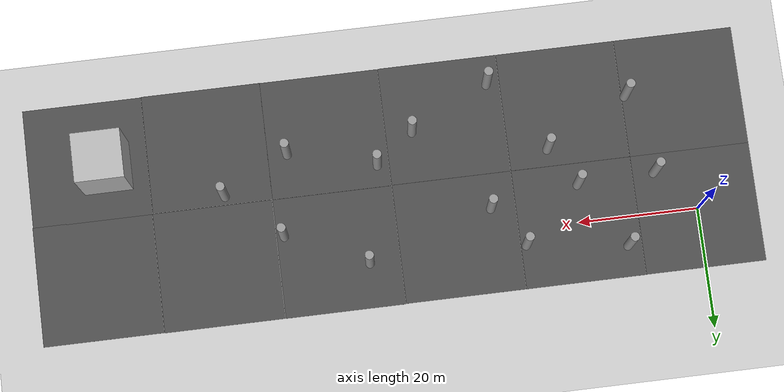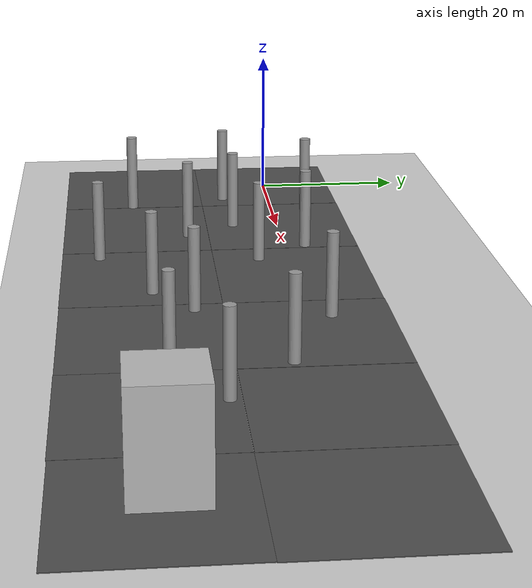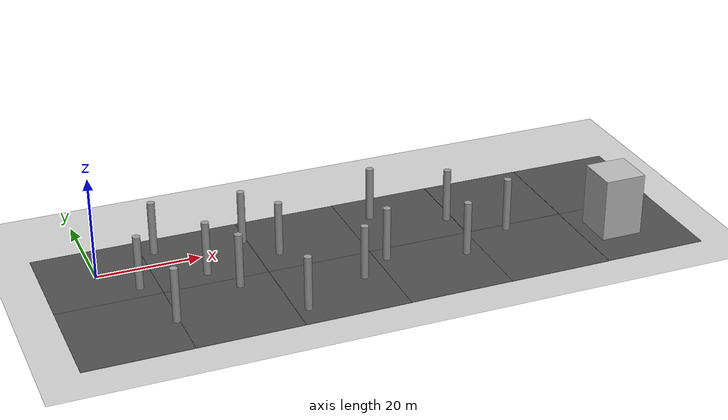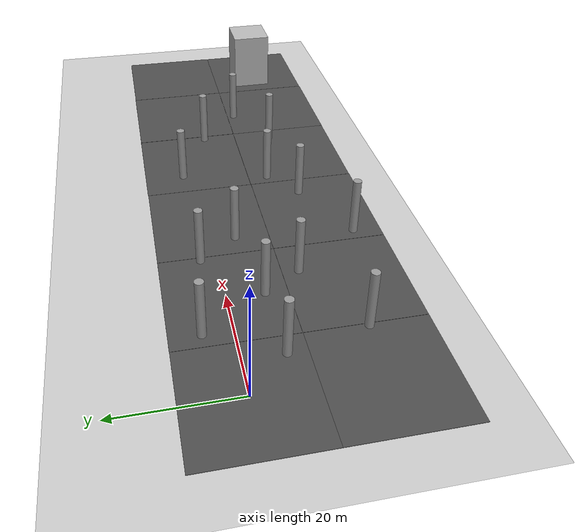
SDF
<sdf version="1.7">
 <world name="default">
  <light name="sun" type="directional">
   <pose>0 0 10 0 -0 0</pose>
   <diffuse>0.8 0.8 0.8 1</diffuse>
   <specular>0.2 0.2 0.2 1</specular>
   <attenuation>
    <range>1000</range>
    <constant>0.9</constant>
    <linear>0.01</linear>
    <quadratic>0.001</quadratic>
   </attenuation>
   <direction>-0.5 0.1 -0.9</direction>
   <spot><inner_angle>0</inner_angle><outer_angle>0</outer_angle><falloff>0</falloff></spot>
  </light>
  <model name="ground_plane">
   <static>1</static>
   <link name="link">
    <collision name="collision">
     <geometry><plane><normal>0 0 1</normal><size>100 100</size></plane></geometry>
     <surface>
      <contact><collide_bitmask>65535</collide_bitmask></contact>
      <friction><ode><mu>100</mu><mu2>50</mu2></ode></friction>
     </surface>
    </collision>
    <visual name="visual">
     <cast_shadows>0</cast_shadows>
     <geometry><plane><normal>0 0 1</normal><size>100 100</size></plane></geometry>
     <material>
      <script><uri>file://media/materials/scripts/gazebo.material</uri><name>Gazebo/Grey</name></script>
     </material>
    </visual>
   </link>
  </model>
  <physics name="default_physics" default="0" type="ode">
   <ode>
    <solver>
     <type>quick</type>
     <iters>10</iters>
     <sor>1.3</sor>
     <use_dynamic_moi_rescaling>0</use_dynamic_moi_rescaling>
    </solver>
    <constraints>
     <cfm>0</cfm>
     <erp>0.2</erp>
     <contact_max_correcting_vel>100</contact_max_correcting_vel>
     <contact_surface_layer>0.001</contact_surface_layer>
    </constraints>
   </ode>
   <max_step_size>0.004</max_step_size>
   <real_time_factor>1</real_time_factor>
   <real_time_update_rate>250</real_time_update_rate>
  </physics>
  <gravity>0 0 -9.8066</gravity>
  <magnetic_field>6e-06 2.3e-05 -4.2e-05</magnetic_field>
  <atmosphere type="adiabatic"/>
  <scene><ambient>0.4 0.4 0.4 1</ambient><background>0.7 0.7 0.7 1</background><shadows>1</shadows></scene>
  <spherical_coordinates>
   <surface_model>EARTH_WGS84</surface_model>
   <latitude_deg>0</latitude_deg>
   <longitude_deg>0</longitude_deg>
   <elevation>0</elevation>
   <heading_deg>0</heading_deg>
  </spherical_coordinates>
  <model name="Fire_0">
   <link name="link_0">
    <inertial>
     <mass>51.3237</mass>
     <inertia><ixx>147.461</ixx><ixy>0</ixy><ixz>0</ixz><iyy>147.461</iyy><iyz>0</iyz><izz>89.614</izz></inertia>
    </inertial>
    <pose>3e-06 5e-06 0 0 -0 0</pose>
    <visual name="visual">
     <geometry><box><size>8.09242 8.09245 12.2488</size></box></geometry>
     <material>
      <lighting>1</lighting>
      <script><uri>file://media/materials/scripts/gazebo.material</uri><name>Gazebo/Fire</name></script>
      <shader type="pixel"/>
     </material>
    </visual>
    <collision name="collision">
     <geometry><box><size>8.09242 8.09245 12.2488</size></box></geometry>
     <surface>
      <friction>
       <ode><mu>1</mu><mu2>1</mu2><fdir1>0 0 0</fdir1><slip1>0</slip1><slip2>0</slip2></ode>
       <torsional>
        <coefficient>1</coefficient>
        <patch_radius>0</patch_radius>
        <surface_radius>0</surface_radius>
        <use_patch_radius>1</use_patch_radius>
        <ode><slip>0</slip></ode>
       </torsional>
      </friction>
      <bounce><restitution_coefficient>0</restitution_coefficient><threshold>1e+06</threshold></bounce>
      <contact>
       <collide_without_contact>0</collide_without_contact>
       <collide_without_contact_bitmask>1</collide_without_contact_bitmask>
       <collide_bitmask>1</collide_bitmask>
       <ode>
        <soft_cfm>0</soft_cfm>
        <soft_erp>0.2</soft_erp>
        <kp>1e+13</kp>
        <kd>1</kd>
        <max_vel>0.01</max_vel>
        <min_depth>0</min_depth>
       </ode>
       <bullet>
        <split_impulse>1</split_impulse>
        <split_impulse_penetration_threshold>-0.01</split_impulse_penetration_threshold>
        <soft_cfm>0</soft_cfm>
        <soft_erp>0.2</soft_erp>
        <kp>1e+13</kp>
        <kd>1</kd>
       </bullet>
      </contact>
     </surface>
    </collision>
   </link>
   <static>0</static>
   <pose>96.9433 -18.5687 6.17436 3e-06 -1e-06 0.003117</pose>
  </model>
  <model name="asphalt_plane_clone_clone">
   <static>1</static>
   <link name="link">
    <collision name="collision"><geometry><box><size>20 20 0.1</size></box></geometry></collision>
    <visual name="visual">
     <cast_shadows>0</cast_shadows>
     <geometry><box><size>20 20 0.1</size></box></geometry>
     <material>
      <script>
       <uri>model://asphalt_plane/materials/scripts</uri>
       <uri>model://asphalt_plane/materials/textures</uri>
       <name>vrc/asphalt</name>
      </script>
     </material>
    </visual>
   </link>
   <pose>40.0221 -0.023387 0 0 -0 0</pose>
  </model>
  <model name="asphalt_plane_clone_clone_0">
   <static>1</static>
   <link name="link">
    <collision name="collision"><geometry><box><size>20 20 0.1</size></box></geometry></collision>
    <visual name="visual">
     <cast_shadows>0</cast_shadows>
     <geometry><box><size>20 20 0.1</size></box></geometry>
     <material>
      <script>
       <uri>model://asphalt_plane/materials/scripts</uri>
       <uri>model://asphalt_plane/materials/textures</uri>
       <name>vrc/asphalt</name>
      </script>
     </material>
    </visual>
   </link>
   <pose>60.0596 0.040619 0 0 -0 0</pose>
  </model>
  <model name="asphalt_plane_clone_clone_1">
   <static>1</static>
   <link name="link">
    <collision name="collision"><geometry><box><size>20 20 0.1</size></box></geometry></collision>
    <visual name="visual">
     <cast_shadows>0</cast_shadows>
     <geometry><box><size>20 20 0.1</size></box></geometry>
     <material>
      <script>
       <uri>model://asphalt_plane/materials/scripts</uri>
       <uri>model://asphalt_plane/materials/textures</uri>
       <name>vrc/asphalt</name>
      </script>
     </material>
    </visual>
   </link>
   <pose>60.0691 -19.9888 0 0 -0 0</pose>
  </model>
  <model name="asphalt_plane_clone_clone_2">
   <static>1</static>
   <link name="link">
    <collision name="collision"><geometry><box><size>20 20 0.1</size></box></geometry></collision>
    <visual name="visual">
     <cast_shadows>0</cast_shadows>
     <geometry><box><size>20 20 0.1</size></box></geometry>
     <material>
      <script>
       <uri>model://asphalt_plane/materials/scripts</uri>
       <uri>model://asphalt_plane/materials/textures</uri>
       <name>vrc/asphalt</name>
      </script>
     </material>
    </visual>
   </link>
   <pose>80.0782 -20.025 0 0 -0 0</pose>
  </model>
  <model name="asphalt_plane_clone_clone_3">
   <static>1</static>
   <link name="link">
    <collision name="collision"><geometry><box><size>20 20 0.1</size></box></geometry></collision>
    <visual name="visual">
     <cast_shadows>0</cast_shadows>
     <geometry><box><size>20 20 0.1</size></box></geometry>
     <material>
      <script>
       <uri>model://asphalt_plane/materials/scripts</uri>
       <uri>model://asphalt_plane/materials/textures</uri>
       <name>vrc/asphalt</name>
      </script>
     </material>
    </visual>
   </link>
   <pose>80.1429 0.023098 0 0 -0 0</pose>
  </model>
  <model name="asphalt_plane_clone_clone_4">
   <static>1</static>
   <link name="link">
    <collision name="collision"><geometry><box><size>20 20 0.1</size></box></geometry></collision>
    <visual name="visual">
     <cast_shadows>0</cast_shadows>
     <geometry><box><size>20 20 0.1</size></box></geometry>
     <material>
      <script>
       <uri>model://asphalt_plane/materials/scripts</uri>
       <uri>model://asphalt_plane/materials/textures</uri>
       <name>vrc/asphalt</name>
      </script>
     </material>
    </visual>
   </link>
   <pose>100.194 -0.029066 0 0 -0 0</pose>
  </model>
  <model name="asphalt_plane_clone_clone_5">
   <static>1</static>
   <link name="link">
    <collision name="collision"><geometry><box><size>20 20 0.1</size></box></geometry></collision>
    <visual name="visual">
     <cast_shadows>0</cast_shadows>
     <geometry><box><size>20 20 0.1</size></box></geometry>
     <material>
      <script>
       <uri>model://asphalt_plane/materials/scripts</uri>
       <uri>model://asphalt_plane/materials/textures</uri>
       <name>vrc/asphalt</name>
      </script>
     </material>
    </visual>
   </link>
   <pose>100.112 -19.9483 0 0 -0 0</pose>
  </model>
  <model name="asphalt_plane_clone_clone_6">
   <static>1</static>
   <link name="link">
    <collision name="collision"><geometry><box><size>20 20 0.1</size></box></geometry></collision>
    <visual name="visual">
     <cast_shadows>0</cast_shadows>
     <geometry><box><size>20 20 0.1</size></box></geometry>
     <material>
      <script>
       <uri>model://asphalt_plane/materials/scripts</uri>
       <uri>model://asphalt_plane/materials/textures</uri>
       <name>vrc/asphalt</name>
      </script>
     </material>
    </visual>
   </link>
   <pose>40.0371 -20.0305 0 0 -0 0</pose>
  </model>
  <model name="asphalt_plane_clone_clone_7">
   <static>1</static>
   <link name="link">
    <collision name="collision"><geometry><box><size>20 20 0.1</size></box></geometry></collision>
    <visual name="visual">
     <cast_shadows>0</cast_shadows>
     <geometry><box><size>20 20 0.1</size></box></geometry>
     <material>
      <script>
       <uri>model://asphalt_plane/materials/scripts</uri>
       <uri>model://asphalt_plane/materials/textures</uri>
       <name>vrc/asphalt</name>
      </script>
     </material>
    </visual>
   </link>
   <pose>19.9819 -20.029 0 0 -0 0</pose>
  </model>
  <model name="asphalt_plane_clone_clone_8">
   <static>1</static>
   <link name="link">
    <collision name="collision"><geometry><box><size>20 20 0.1</size></box></geometry></collision>
    <visual name="visual">
     <cast_shadows>0</cast_shadows>
     <geometry><box><size>20 20 0.1</size></box></geometry>
     <material>
      <script>
       <uri>model://asphalt_plane/materials/scripts</uri>
       <uri>model://asphalt_plane/materials/textures</uri>
       <name>vrc/asphalt</name>
      </script>
     </material>
    </visual>
   </link>
   <pose>-0.073934 -20.035 0 0 -0 0</pose>
  </model>
  <model name="unit_cylinder_clone_clone_4">
   <pose>6.47679 -6.78193 5.35115 1e-06 -6e-06 0.64433</pose>
   <link name="link">
    <inertial>
     <mass>1</mass>
     <inertia><ixx>0.145833</ixx><ixy>0</ixy><ixz>0</ixz><iyy>0.145833</iyy><iyz>0</iyz><izz>0.125</izz></inertia>
    </inertial>
    <collision name="collision">
     <geometry><cylinder><radius>0.736075</radius><length>10.6023</length></cylinder></geometry>
    </collision>
    <visual name="visual">
     <geometry><cylinder><radius>0.736075</radius><length>10.6023</length></cylinder></geometry>
     <material>
      <script><name>Gazebo/Grey</name><uri>file://media/materials/scripts/gazebo.material</uri></script>
     </material>
    </visual>
   </link>
  </model>
  <model name="asphalt_plane_clone_clone_8_clone">
   <static>1</static>
   <link name="link">
    <collision name="collision"><geometry><box><size>20 20 0.1</size></box></geometry></collision>
    <visual name="visual">
     <cast_shadows>0</cast_shadows>
     <geometry><box><size>20 20 0.1</size></box></geometry>
     <material>
      <script>
       <uri>model://asphalt_plane/materials/scripts</uri>
       <uri>model://asphalt_plane/materials/textures</uri>
       <name>vrc/asphalt</name>
      </script>
     </material>
    </visual>
   </link>
   <pose>19.9733 -0.017558 0 0 -0 0</pose>
  </model>
  <model name="asphalt_plane_clone_clone_8_clone_0">
   <static>1</static>
   <link name="link">
    <collision name="collision"><geometry><box><size>20 20 0.1</size></box></geometry></collision>
    <visual name="visual">
     <cast_shadows>0</cast_shadows>
     <geometry><box><size>20 20 0.1</size></box></geometry>
     <material>
      <script>
       <uri>model://asphalt_plane/materials/scripts</uri>
       <uri>model://asphalt_plane/materials/textures</uri>
       <name>vrc/asphalt</name>
      </script>
     </material>
    </visual>
   </link>
   <pose>-0.073686 -0.041685 0 0 -0 0</pose>
  </model>
  <model name="unit_cylinder_clone_clone_4_clone">
   <pose>23.563 -12.8469 5.35115 -4e-06 -2e-06 0.653966</pose>
   <link name="link">
    <inertial>
     <mass>1</mass>
     <inertia><ixx>0.145833</ixx><ixy>0</ixy><ixz>0</ixz><iyy>0.145833</iyy><iyz>0</iyz><izz>0.125</izz></inertia>
    </inertial>
    <collision name="collision">
     <geometry><cylinder><radius>0.736075</radius><length>10.6023</length></cylinder></geometry>
    </collision>
    <visual name="visual">
     <geometry><cylinder><radius>0.736075</radius><length>10.6023</length></cylinder></geometry>
     <material>
      <script><name>Gazebo/Grey</name><uri>file://media/materials/scripts/gazebo.material</uri></script>
     </material>
    </visual>
   </link>
  </model>
  <model name="unit_cylinder_clone_clone_4_clone_0">
   <pose>34.1888 -4.02993 5.351 1e-06 -8e-06 0.645454</pose>
   <link name="link">
    <inertial>
     <mass>1</mass>
     <inertia><ixx>0.145833</ixx><ixy>0</ixy><ixz>0</ixz><iyy>0.145833</iyy><iyz>0</iyz><izz>0.125</izz></inertia>
    </inertial>
    <collision name="collision">
     <geometry><cylinder><radius>0.736075</radius><length>10.6023</length></cylinder></geometry>
    </collision>
    <visual name="visual">
     <geometry><cylinder><radius>0.736075</radius><length>10.6023</length></cylinder></geometry>
     <material>
      <script><name>Gazebo/Grey</name><uri>file://media/materials/scripts/gazebo.material</uri></script>
     </material>
    </visual>
   </link>
  </model>
  <model name="unit_cylinder_clone_clone_4_clone_1">
   <pose>52.0367 -13.5811 5.35113 -2e-06 -0 0.650306</pose>
   <link name="link">
    <inertial>
     <mass>1</mass>
     <inertia><ixx>0.145833</ixx><ixy>0</ixy><ixz>0</ixz><iyy>0.145833</iyy><iyz>0</iyz><izz>0.125</izz></inertia>
    </inertial>
    <collision name="collision">
     <geometry><cylinder><radius>0.736075</radius><length>10.6023</length></cylinder></geometry>
    </collision>
    <visual name="visual">
     <geometry><cylinder><radius>0.736075</radius><length>10.6023</length></cylinder></geometry>
     <material>
      <script><name>Gazebo/Grey</name><uri>file://media/materials/scripts/gazebo.material</uri></script>
     </material>
    </visual>
   </link>
  </model>
  <model name="unit_cylinder_clone_clone_4_clone_2">
   <pose>45.6556 -18.4488 5.35115 -3e-06 -2e-06 0.648044</pose>
   <link name="link">
    <inertial>
     <mass>1</mass>
     <inertia><ixx>0.145833</ixx><ixy>0</ixy><ixz>0</ixz><iyy>0.145833</iyy><iyz>0</iyz><izz>0.125</izz></inertia>
    </inertial>
    <collision name="collision">
     <geometry><cylinder><radius>0.736075</radius><length>10.6023</length></cylinder></geometry>
    </collision>
    <visual name="visual">
     <geometry><cylinder><radius>0.736075</radius><length>10.6023</length></cylinder></geometry>
     <material>
      <script><name>Gazebo/Grey</name><uri>file://media/materials/scripts/gazebo.material</uri></script>
     </material>
    </visual>
   </link>
  </model>
  <model name="unit_cylinder_clone_clone_4_clone_3">
   <pose>66.7892 -17.2108 5.35115 2e-06 -0 0.656097</pose>
   <link name="link">
    <inertial>
     <mass>1</mass>
     <inertia><ixx>0.145833</ixx><ixy>0</ixy><ixz>0</ixz><iyy>0.145833</iyy><iyz>0</iyz><izz>0.125</izz></inertia>
    </inertial>
    <collision name="collision">
     <geometry><cylinder><radius>0.736075</radius><length>10.6023</length></cylinder></geometry>
    </collision>
    <visual name="visual">
     <geometry><cylinder><radius>0.736075</radius><length>10.6023</length></cylinder></geometry>
     <material>
      <script><name>Gazebo/Grey</name><uri>file://media/materials/scripts/gazebo.material</uri></script>
     </material>
    </visual>
   </link>
  </model>
  <model name="unit_cylinder_clone_clone_4_clone_4">
   <pose>68.8065 -3.48474 5.35112 2e-06 -3e-06 0.649889</pose>
   <link name="link">
    <inertial>
     <mass>1</mass>
     <inertia><ixx>0.145833</ixx><ixy>0</ixy><ixz>0</ixz><iyy>0.145833</iyy><iyz>0</iyz><izz>0.125</izz></inertia>
    </inertial>
    <collision name="collision">
     <geometry><cylinder><radius>0.736075</radius><length>10.6023</length></cylinder></geometry>
    </collision>
    <visual name="visual">
     <geometry><cylinder><radius>0.736075</radius><length>10.6023</length></cylinder></geometry>
     <material>
      <script><name>Gazebo/Grey</name><uri>file://media/materials/scripts/gazebo.material</uri></script>
     </material>
    </visual>
   </link>
  </model>
  <model name="unit_cylinder_clone_clone_4_clone_5">
   <pose>55.2036 2.66625 5.35114 4e-06 -4e-06 0.650151</pose>
   <link name="link">
    <inertial>
     <mass>1</mass>
     <inertia><ixx>0.145833</ixx><ixy>0</ixy><ixz>0</ixz><iyy>0.145833</iyy><iyz>0</iyz><izz>0.125</izz></inertia>
    </inertial>
    <collision name="collision">
     <geometry><cylinder><radius>0.736075</radius><length>10.6023</length></cylinder></geometry>
    </collision>
    <visual name="visual">
     <geometry><cylinder><radius>0.736075</radius><length>10.6023</length></cylinder></geometry>
     <material>
      <script><name>Gazebo/Grey</name><uri>file://media/materials/scripts/gazebo.material</uri></script>
     </material>
    </visual>
   </link>
  </model>
  <model name="unit_cylinder_clone_clone_4_clone_6">
   <pose>29.1274 2.78784 5.35114 6e-06 1e-05 0.656123</pose>
   <link name="link">
    <inertial>
     <mass>1</mass>
     <inertia><ixx>0.145833</ixx><ixy>0</ixy><ixz>0</ixz><iyy>0.145833</iyy><iyz>0</iyz><izz>0.125</izz></inertia>
    </inertial>
    <collision name="collision">
     <geometry><cylinder><radius>0.736075</radius><length>10.6023</length></cylinder></geometry>
    </collision>
    <visual name="visual">
     <geometry><cylinder><radius>0.736075</radius><length>10.6023</length></cylinder></geometry>
     <material>
      <script><name>Gazebo/Grey</name><uri>file://media/materials/scripts/gazebo.material</uri></script>
     </material>
    </visual>
   </link>
  </model>
  <model name="unit_cylinder_clone_clone_4_clone_7">
   <pose>12.3659 4.86462 5.35116 1e-06 1e-05 0.646622</pose>
   <link name="link">
    <inertial>
     <mass>1</mass>
     <inertia><ixx>0.145833</ixx><ixy>0</ixy><ixz>0</ixz><iyy>0.145833</iyy><iyz>0</iyz><izz>0.125</izz></inertia>
    </inertial>
    <collision name="collision">
     <geometry><cylinder><radius>0.736075</radius><length>10.6023</length></cylinder></geometry>
    </collision>
    <visual name="visual">
     <geometry><cylinder><radius>0.736075</radius><length>10.6023</length></cylinder></geometry>
     <material>
      <script><name>Gazebo/Grey</name><uri>file://media/materials/scripts/gazebo.material</uri></script>
     </material>
    </visual>
   </link>
  </model>
  <model name="unit_cylinder_clone_clone_4_clone_8">
   <pose>9.48351 -20.2645 5.35115 -3e-06 -4e-06 0.68599</pose>
   <link name="link">
    <inertial>
     <mass>1</mass>
     <inertia><ixx>0.145833</ixx><ixy>0</ixy><ixz>0</ixz><iyy>0.145833</iyy><iyz>0</iyz><izz>0.125</izz></inertia>
    </inertial>
    <collision name="collision">
     <geometry><cylinder><radius>0.736075</radius><length>10.6023</length></cylinder></geometry>
    </collision>
    <visual name="visual">
     <geometry><cylinder><radius>0.736075</radius><length>10.6023</length></cylinder></geometry>
     <material>
      <script><name>Gazebo/Grey</name><uri>file://media/materials/scripts/gazebo.material</uri></script>
     </material>
    </visual>
   </link>
  </model>
  <model name="unit_cylinder_clone_clone_4_clone_9">
   <pose>32.2687 -25.069 5.35115 -2e-06 4e-06 0.658497</pose>
   <link name="link">
    <inertial>
     <mass>1</mass>
     <inertia><ixx>0.145833</ixx><ixy>0</ixy><ixz>0</ixz><iyy>0.145833</iyy><iyz>0</iyz><izz>0.125</izz></inertia>
    </inertial>
    <collision name="collision">
     <geometry><cylinder><radius>0.736075</radius><length>10.6023</length></cylinder></geometry>
    </collision>
    <visual name="visual">
     <geometry><cylinder><radius>0.736075</radius><length>10.6023</length></cylinder></geometry>
     <material>
      <script><name>Gazebo/Grey</name><uri>file://media/materials/scripts/gazebo.material</uri></script>
     </material>
    </visual>
   </link>
  </model>
  <model name="unit_cylinder_clone_clone_4_clone_10">
   <pose>77.8536 -11.3731 5.35115 0 -4e-06 0.666395</pose>
   <link name="link">
    <inertial>
     <mass>1</mass>
     <inertia><ixx>0.145833</ixx><ixy>0</ixy><ixz>0</ixz><iyy>0.145833</iyy><iyz>0</iyz><izz>0.125</izz></inertia>
    </inertial>
    <collision name="collision">
     <geometry><cylinder><radius>0.736075</radius><length>10.6023</length></cylinder></geometry>
    </collision>
    <visual name="visual">
     <geometry><cylinder><radius>0.736075</radius><length>10.6023</length></cylinder></geometry>
     <material>
      <script><name>Gazebo/Grey</name><uri>file://media/materials/scripts/gazebo.material</uri></script>
     </material>
    </visual>
   </link>
  </model>
  <model name="unit_cylinder_clone_clone_4_clone_11">
   <pose>19.3766 -6.28687 5.35113 -2e-06 -4e-06 0.663263</pose>
   <link name="link">
    <inertial>
     <mass>1</mass>
     <inertia><ixx>0.145833</ixx><ixy>0</ixy><ixz>0</ixz><iyy>0.145833</iyy><iyz>0</iyz><izz>0.125</izz></inertia>
    </inertial>
    <collision name="collision">
     <geometry><cylinder><radius>0.736075</radius><length>10.6023</length></cylinder></geometry>
    </collision>
    <visual name="visual">
     <geometry><cylinder><radius>0.736075</radius><length>10.6023</length></cylinder></geometry>
     <material>
      <script><name>Gazebo/Grey</name><uri>file://media/materials/scripts/gazebo.material</uri></script>
     </material>
    </visual>
   </link>
  </model>
 </world>
</sdf>
